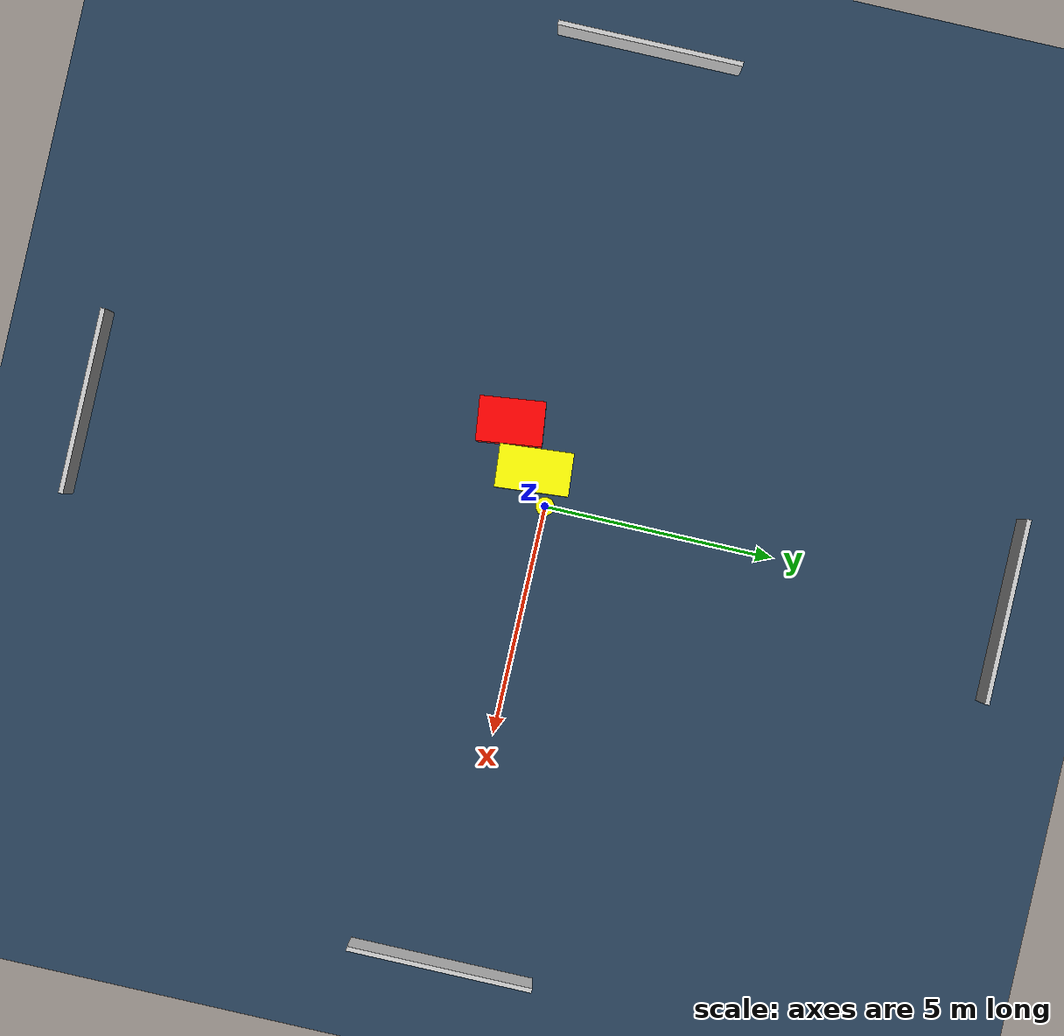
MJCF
<?xml version="1.0" ?>
<mujoco model="generated_environment">
  <option timestep="0.01" integrator="RK4" cone="elliptic"/>
  <default>
    <geom density="1"/>
  </default>
  <asset>
    <texture builtin="gradient" height="3072" name="skybox" rgb1="0.3 0.5 0.7" rgb2="0 0 0" type="skybox" width="512"/>
    <texture builtin="checker" height="300" name="groundplane" rgb1="0.2 0.3 0.4" rgb2="0.1 0.2 0.3" type="2d" width="300"/>
    <material name="groundplane" reflectance="0.2" texrepeat="5 5" texture="groundplane"/>
  </asset>
  <worldbody>
    <light dir="0 0 -1" directional="true" pos="0 0 1.5"/>
    <geom condim="3" friction="0.5 0.005 0.001" material="groundplane" name="floor" pos="0 0 0" size="0 0 0.05" type="plane"/>
    <body name="walls">
      <geom name="wall_1" condim="4" pos="-10.0 0.0 0.3" rgba="0.800000011920929 0.800000011920929 0.800000011920929 1.0" size="0.05 2.0 0.3" type="box"/>
      <geom name="wall_2" condim="4" pos="10.0 0.0 0.3" rgba="0.800000011920929 0.800000011920929 0.800000011920929 1.0" size="0.05 2.0 0.3" type="box"/>
      <geom name="wall_3" condim="4" pos="0.0 -10.0 0.3" rgba="0.800000011920929 0.800000011920929 0.800000011920929 1.0" size="2.0 0.05 0.3" type="box"/>
      <geom name="wall_4" condim="4" pos="0.0 10.0 0.3" rgba="0.800000011920929 0.800000011920929 0.800000011920929 1.0" size="2.0 0.05 0.3" type="box"/>
    </body>
    <body name="robot">
      <joint name="joint_x" type="slide" pos="0 0 0" axis="1 0 0"/>
      <joint name="joint_y" type="slide" pos="0 0 0" axis="0 1 0"/>
      <geom name="robot" type="cylinder" pos="0.0 0.0 0.2" size="0.2 0.2 0.0" mass="5.0" friction="1.0 0.005 0.0001" condim="4" rgba="1.0 1.0 0.0 1.0"/>
    </body>
    <body name="obstacle_1_movable">
      <geom name="obstacle_1_movable" condim="4" pos="-0.6961954249035166 -0.39160915656580636 0.3" euler="0 0 274.88419004979096" friction="0.0 0.005 0.001" rgba="1.0 1.0 0.0 1.0" size="0.7903445158433677 0.4634914321822412 0.3" type="box" mass="0.1"/>
      <joint type="free"/>
    </body>
    <body name="obstacle_2_static">
      <geom name="obstacle_2_static" condim="4" pos="-1.5936579971309424 -1.0992127641232747 0.3" euler="0 0 6.95650698872317" friction="0.0 0.005 0.001" rgba="1.0 0.0 0.0 1.0" size="0.4787374305146212 0.7061314909704919 0.3" type="box"/>
    </body>
  </worldbody>
  <actuator>
    <motor name="actuator_x" joint="joint_x" gear="1" ctrlrange="-1 1"/>
    <motor name="actuator_y" joint="joint_y" gear="1" ctrlrange="-1 1"/>
  </actuator>
</mujoco>
